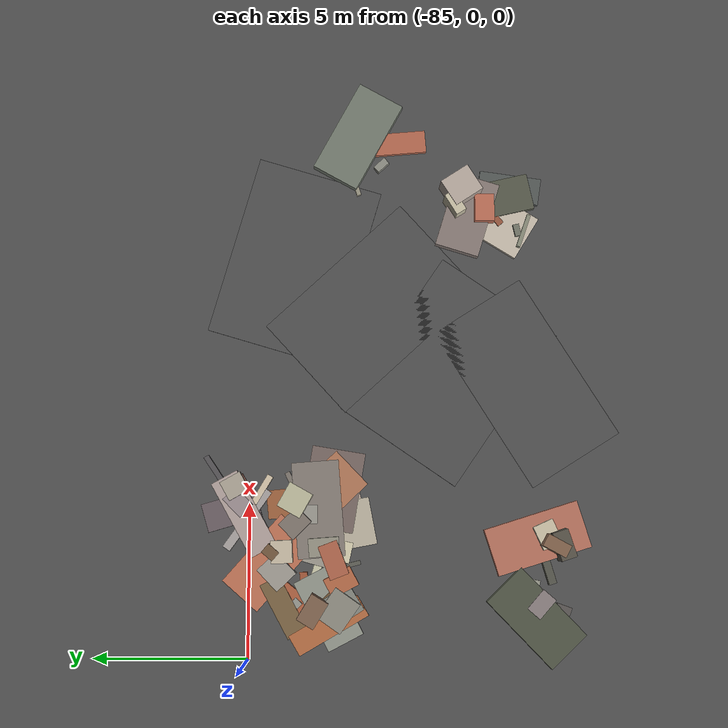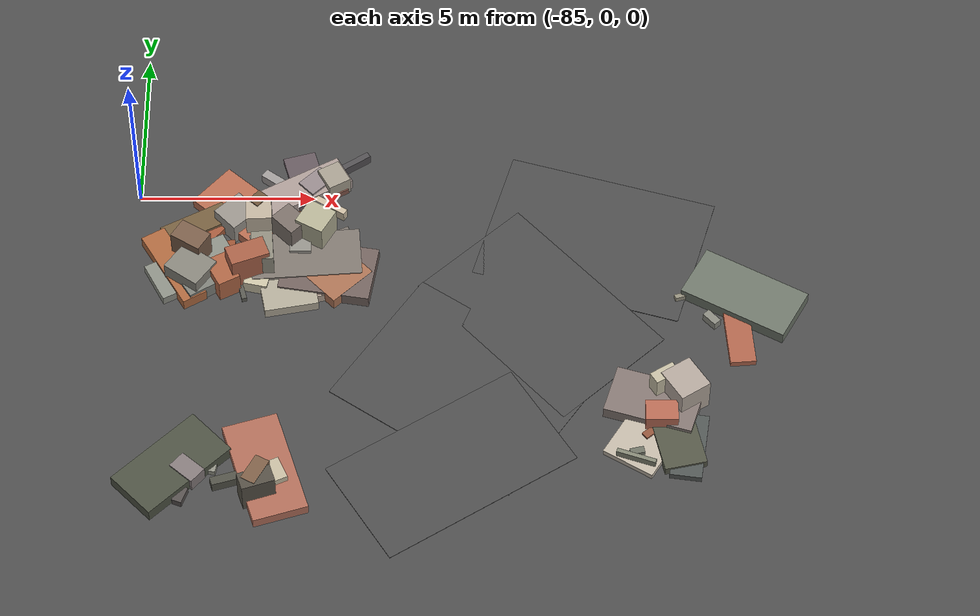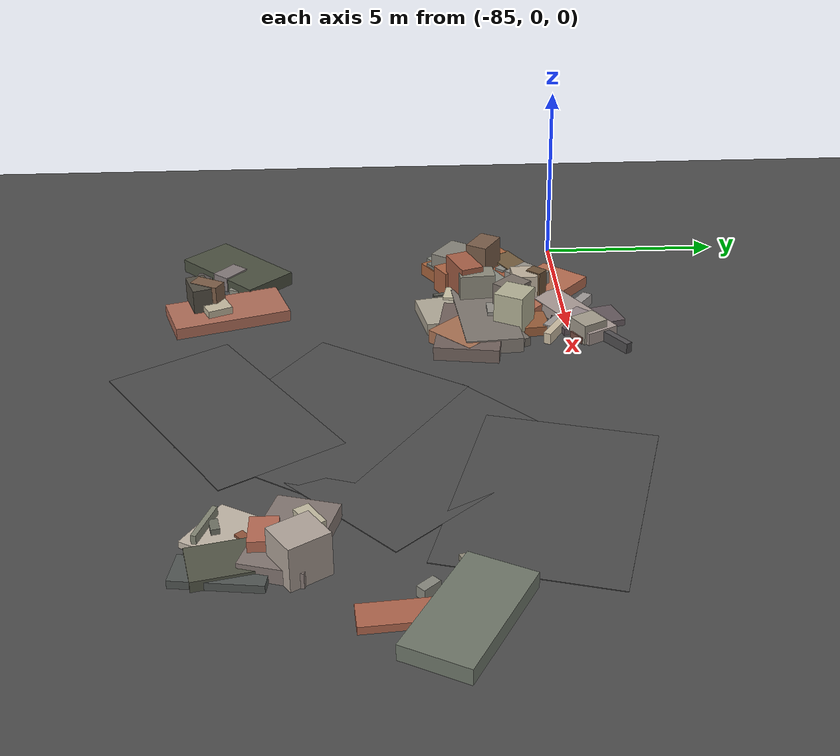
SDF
<sdf version="1.6">
 <world name="navitas_arena">
  <model name="ground_plane">
   <static>true</static>
   <link name="link">
    <collision name="collision">
     <geometry><plane><normal>0 0 1</normal><size>400 400</size></plane></geometry>
     <surface><friction><ode><mu>0.800</mu><mu2>0.800</mu2></ode></friction></surface>
    </collision>
    <visual name="visual">
     <cast_shadows>false</cast_shadows>
     <geometry><plane><normal>0 0 1</normal><size>400 400</size></plane></geometry>
     <material>
      <specular>0.04 0.04 0.04 1</specular>
      <script>
       <uri>file://media/materials/scripts/navitas_asphalt.material</uri>
       <name>Navitas/RealArenaAsphalt</name>
      </script>
     </material>
    </visual>
   </link>
  </model>
  <model name="road_kolay_3_9">
   <static>true</static>
   <pose>-76.035 -9.036 0.040 0 0 2.138</pose>
   <link name="link">
    <collision name="col"><geometry><box><size>3.358 6.000 0.020</size></box></geometry></collision>
    <visual name="vis">
     <geometry><box><size>3.358 6.000 0.020</size></box></geometry>
     <material>
      <specular>0.04 0.04 0.04 1</specular>
      <script>
       <uri>file://media/materials/scripts/navitas_asphalt.material</uri>
       <name>Navitas/RealArenaAsphalt</name>
      </script>
     </material>
    </visual>
   </link>
  </model>
  <model name="road_kolay_3_10">
   <static>true</static>
   <pose>-75.678 -6.500 0.040 0 0 0.974</pose>
   <link name="link">
    <collision name="col"><geometry><box><size>4.526 6.000 0.020</size></box></geometry></collision>
    <visual name="vis">
     <geometry><box><size>4.526 6.000 0.020</size></box></geometry>
     <material>
      <specular>0.04 0.04 0.04 1</specular>
      <script>
       <uri>file://media/materials/scripts/navitas_asphalt.material</uri>
       <name>Navitas/RealArenaAsphalt</name>
      </script>
     </material>
    </visual>
   </link>
  </model>
  <model name="road_kolay_3_11">
   <static>true</static>
   <pose>-73.572 -4.000 0.040 0 0 0.744</pose>
   <link name="link">
    <collision name="col"><geometry><box><size>3.855 6.000 0.020</size></box></geometry></collision>
    <visual name="vis">
     <geometry><box><size>3.855 6.000 0.020</size></box></geometry>
     <material>
      <specular>0.04 0.04 0.04 1</specular>
      <script>
       <uri>file://media/materials/scripts/navitas_asphalt.material</uri>
       <name>Navitas/RealArenaAsphalt</name>
      </script>
     </material>
    </visual>
   </link>
  </model>
  <model name="road_kolay_3_12">
   <static>true</static>
   <pose>-72.023 -1.417 0.040 0 0 1.287</pose>
   <link name="link">
    <collision name="col"><geometry><box><size>4.199 6.000 0.020</size></box></geometry></collision>
    <visual name="vis">
     <geometry><box><size>4.199 6.000 0.020</size></box></geometry>
     <material>
      <specular>0.04 0.04 0.04 1</specular>
      <script>
       <uri>file://media/materials/scripts/navitas_asphalt.material</uri>
       <name>Navitas/RealArenaAsphalt</name>
      </script>
     </material>
    </visual>
   </link>
  </model>
  <model name="deb_kolay_2">
   <static>true</static>
   <pose>-80.554 -2.264 0.000 0 0 0</pose>
   <link name="link">
    <collision name="col_0">
     <pose>0.651 0.755 0.613 0.000 0.000 -0.508</pose>
     <geometry><box><size>0.859 0.829 1.226</size></box></geometry>
    </collision>
    <visual name="vis_0">
     <pose>0.651 0.755 0.613 0.000 0.000 -0.508</pose>
     <geometry><box><size>0.859 0.829 1.226</size></box></geometry>
     <material>
      <ambient>0.66 0.64 0.54 1</ambient>
      <diffuse>0.71 0.70 0.59 1</diffuse>
      <specular>0.05 0.05 0.045 1</specular>
     </material>
    </visual>
    <collision name="col_1">
     <pose>1.012 -0.440 0.184 0.000 0.000 -0.160</pose>
     <geometry><box><size>2.603 1.739 0.369</size></box></geometry>
    </collision>
    <visual name="vis_1">
     <pose>1.012 -0.440 0.184 0.000 0.000 -0.160</pose>
     <geometry><box><size>2.603 1.739 0.369</size></box></geometry>
     <material>
      <ambient>0.41 0.36 0.34 1</ambient>
      <diffuse>0.45 0.39 0.37 1</diffuse>
      <specular>0.05 0.05 0.045 1</specular>
     </material>
    </visual>
    <collision name="col_2">
     <pose>-0.212 -0.435 0.062 0.000 0.000 0.553</pose>
     <geometry><box><size>1.497 0.305 0.124</size></box></geometry>
    </collision>
    <visual name="vis_2">
     <pose>-0.212 -0.435 0.062 0.000 0.000 0.553</pose>
     <geometry><box><size>1.497 0.305 0.124</size></box></geometry>
     <material>
      <ambient>0.40 0.37 0.33 1</ambient>
      <diffuse>0.43 0.40 0.35 1</diffuse>
      <specular>0.05 0.05 0.045 1</specular>
     </material>
    </visual>
    <collision name="col_3">
     <pose>0.547 -1.020 0.134 0.000 0.000 0.248</pose>
     <geometry><box><size>1.493 0.755 0.269</size></box></geometry>
    </collision>
    <visual name="vis_3">
     <pose>0.547 -1.020 0.134 0.000 0.000 0.248</pose>
     <geometry><box><size>1.493 0.755 0.269</size></box></geometry>
     <material>
      <ambient>0.65 0.59 0.53 1</ambient>
      <diffuse>0.70 0.63 0.57 1</diffuse>
      <specular>0.05 0.05 0.045 1</specular>
     </material>
    </visual>
    <collision name="col_4">
     <pose>-0.839 -0.039 0.086 0.000 0.000 -0.954</pose>
     <geometry><box><size>1.431 0.207 0.172</size></box></geometry>
    </collision>
    <visual name="vis_4">
     <pose>-0.839 -0.039 0.086 0.000 0.000 -0.954</pose>
     <geometry><box><size>1.431 0.207 0.172</size></box></geometry>
     <material>
      <ambient>0.42 0.31 0.21 1</ambient>
      <diffuse>0.46 0.33 0.22 1</diffuse>
      <specular>0.05 0.05 0.045 1</specular>
     </material>
    </visual>
    <collision name="col_5">
     <pose>-0.965 -0.698 0.192 0.000 0.000 -0.212</pose>
     <geometry><box><size>0.676 0.712 0.384</size></box></geometry>
    </collision>
    <visual name="vis_5">
     <pose>-0.965 -0.698 0.192 0.000 0.000 -0.212</pose>
     <geometry><box><size>0.676 0.712 0.384</size></box></geometry>
     <material>
      <ambient>0.74 0.71 0.61 1</ambient>
      <diffuse>0.80 0.77 0.66 1</diffuse>
      <specular>0.05 0.05 0.045 1</specular>
     </material>
    </visual>
    <collision name="col_6">
     <pose>-0.835 -0.171 0.544 0.000 0.000 0.081</pose>
     <geometry><box><size>0.597 0.976 1.089</size></box></geometry>
    </collision>
    <visual name="vis_6">
     <pose>-0.835 -0.171 0.544 0.000 0.000 0.081</pose>
     <geometry><box><size>0.597 0.976 1.089</size></box></geometry>
     <material>
      <ambient>0.52 0.51 0.46 1</ambient>
      <diffuse>0.56 0.55 0.49 1</diffuse>
      <specular>0.05 0.05 0.045 1</specular>
     </material>
    </visual>
   </link>
  </model>
  <model name="deb_kolay_29">
   <static>true</static>
   <pose>-67.892 -3.838 0.000 0 0 0</pose>
   <link name="link">
    <collision name="col_0">
     <pose>-0.892 -0.433 0.130 0.000 0.000 0.741</pose>
     <geometry><box><size>0.238 0.470 0.260</size></box></geometry>
    </collision>
    <visual name="vis_0">
     <pose>-0.892 -0.433 0.130 0.000 0.000 0.741</pose>
     <geometry><box><size>0.238 0.470 0.260</size></box></geometry>
     <material>
      <ambient>0.50 0.50 0.46 1</ambient>
      <diffuse>0.54 0.54 0.50 1</diffuse>
      <specular>0.05 0.05 0.045 1</specular>
     </material>
    </visual>
    <collision name="col_1">
     <pose>-1.013 0.576 0.102 0.000 0.000 0.300</pose>
     <geometry><box><size>1.855 0.139 0.204</size></box></geometry>
    </collision>
    <visual name="vis_1">
     <pose>-1.013 0.576 0.102 0.000 0.000 0.300</pose>
     <geometry><box><size>1.855 0.139 0.204</size></box></geometry>
     <material>
      <ambient>0.54 0.52 0.45 1</ambient>
      <diffuse>0.58 0.56 0.49 1</diffuse>
      <specular>0.05 0.05 0.045 1</specular>
     </material>
    </visual>
    <collision name="col_2">
     <pose>-0.605 1.030 0.143 0.000 0.000 1.935</pose>
     <geometry><box><size>1.179 0.144 0.286</size></box></geometry>
    </collision>
    <visual name="vis_2">
     <pose>-0.605 1.030 0.143 0.000 0.000 1.935</pose>
     <geometry><box><size>1.179 0.144 0.286</size></box></geometry>
     <material>
      <ambient>0.34 0.33 0.30 1</ambient>
      <diffuse>0.37 0.35 0.32 1</diffuse>
      <specular>0.05 0.05 0.045 1</specular>
     </material>
    </visual>
    <collision name="col_3">
     <pose>-0.638 0.671 0.174 0.000 0.000 1.860</pose>
     <geometry><box><size>0.388 0.447 0.348</size></box></geometry>
    </collision>
    <visual name="vis_3">
     <pose>-0.638 0.671 0.174 0.000 0.000 1.860</pose>
     <geometry><box><size>0.388 0.447 0.348</size></box></geometry>
     <material>
      <ambient>0.58 0.59 0.52 1</ambient>
      <diffuse>0.63 0.64 0.56 1</diffuse>
      <specular>0.05 0.05 0.045 1</specular>
     </material>
    </visual>
    <collision name="col_4">
     <pose>-0.734 0.701 0.133 0.000 0.000 2.496</pose>
     <geometry><box><size>0.183 0.207 0.266</size></box></geometry>
    </collision>
    <visual name="vis_4">
     <pose>-0.734 0.701 0.133 0.000 0.000 2.496</pose>
     <geometry><box><size>0.183 0.207 0.266</size></box></geometry>
     <material>
      <ambient>0.49 0.49 0.45 1</ambient>
      <diffuse>0.53 0.53 0.49 1</diffuse>
      <specular>0.05 0.05 0.045 1</specular>
     </material>
    </visual>
    <collision name="col_5">
     <pose>-0.169 -0.607 0.093 0.000 0.000 1.655</pose>
     <geometry><box><size>2.595 0.722 0.186</size></box></geometry>
    </collision>
    <visual name="vis_5">
     <pose>-0.169 -0.607 0.093 0.000 0.000 1.655</pose>
     <geometry><box><size>2.595 0.722 0.186</size></box></geometry>
     <material>
      <ambient>0.64 0.37 0.27 1</ambient>
      <diffuse>0.69 0.40 0.30 1</diffuse>
      <specular>0.05 0.05 0.045 1</specular>
     </material>
    </visual>
    <collision name="col_6">
     <pose>0.046 0.342 0.191 0.000 0.000 2.640</pose>
     <geometry><box><size>3.188 1.610 0.382</size></box></geometry>
    </collision>
    <visual name="vis_6">
     <pose>0.046 0.342 0.191 0.000 0.000 2.640</pose>
     <geometry><box><size>3.188 1.610 0.382</size></box></geometry>
     <material>
      <ambient>0.41 0.43 0.38 1</ambient>
      <diffuse>0.44 0.47 0.42 1</diffuse>
      <specular>0.05 0.05 0.045 1</specular>
     </material>
    </visual>
   </link>
  </model>
  <model name="deb_kolay_38">
   <static>true</static>
   <pose>-80.205 -1.966 0.000 0 0 0</pose>
   <link name="link">
    <collision name="col_0">
     <pose>0.826 0.015 0.114 0.000 0.000 1.379</pose>
     <geometry><box><size>0.308 0.367 0.227</size></box></geometry>
    </collision>
    <visual name="vis_0">
     <pose>0.826 0.015 0.114 0.000 0.000 1.379</pose>
     <geometry><box><size>0.308 0.367 0.227</size></box></geometry>
     <material>
      <ambient>0.40 0.35 0.34 1</ambient>
      <diffuse>0.43 0.38 0.36 1</diffuse>
      <specular>0.05 0.05 0.045 1</specular>
     </material>
    </visual>
    <collision name="col_1">
     <pose>-0.144 0.079 0.251 0.000 0.000 1.573</pose>
     <geometry><box><size>0.656 0.609 0.502</size></box></geometry>
    </collision>
    <visual name="vis_1">
     <pose>-0.144 0.079 0.251 0.000 0.000 1.573</pose>
     <geometry><box><size>0.656 0.609 0.502</size></box></geometry>
     <material>
      <ambient>0.54 0.52 0.50 1</ambient>
      <diffuse>0.58 0.57 0.54 1</diffuse>
      <specular>0.05 0.05 0.045 1</specular>
     </material>
    </visual>
    <collision name="col_2">
     <pose>-0.429 0.456 0.557 0.000 0.000 2.352</pose>
     <geometry><box><size>0.819 0.673 1.114</size></box></geometry>
    </collision>
    <visual name="vis_2">
     <pose>-0.429 0.456 0.557 0.000 0.000 2.352</pose>
     <geometry><box><size>0.819 0.673 1.114</size></box></geometry>
     <material>
      <ambient>0.44 0.41 0.38 1</ambient>
      <diffuse>0.48 0.44 0.41 1</diffuse>
      <specular>0.05 0.05 0.045 1</specular>
     </material>
    </visual>
    <collision name="col_3">
     <pose>0.225 0.124 0.079 0.000 0.000 3.412</pose>
     <geometry><box><size>0.389 0.396 0.159</size></box></geometry>
    </collision>
    <visual name="vis_3">
     <pose>0.225 0.124 0.079 0.000 0.000 3.412</pose>
     <geometry><box><size>0.389 0.396 0.159</size></box></geometry>
     <material>
      <ambient>0.37 0.32 0.31 1</ambient>
      <diffuse>0.40 0.34 0.34 1</diffuse>
      <specular>0.05 0.05 0.045 1</specular>
     </material>
    </visual>
    <collision name="col_4">
     <pose>0.017 -0.054 0.113 0.000 0.000 1.210</pose>
     <geometry><box><size>2.265 0.147 0.227</size></box></geometry>
    </collision>
    <visual name="vis_4">
     <pose>0.017 -0.054 0.113 0.000 0.000 1.210</pose>
     <geometry><box><size>2.265 0.147 0.227</size></box></geometry>
     <material>
      <ambient>0.69 0.66 0.55 1</ambient>
      <diffuse>0.75 0.72 0.59 1</diffuse>
      <specular>0.05 0.05 0.045 1</specular>
     </material>
    </visual>
    <collision name="col_5">
     <pose>-0.809 0.172 0.099 0.000 0.000 3.140</pose>
     <geometry><box><size>0.459 0.172 0.198</size></box></geometry>
    </collision>
    <visual name="vis_5">
     <pose>-0.809 0.172 0.099 0.000 0.000 3.140</pose>
     <geometry><box><size>0.459 0.172 0.198</size></box></geometry>
     <material>
      <ambient>0.65 0.62 0.55 1</ambient>
      <diffuse>0.70 0.67 0.60 1</diffuse>
      <specular>0.05 0.05 0.045 1</specular>
     </material>
    </visual>
    <collision name="col_6">
     <pose>-0.823 -0.000 0.113 0.000 0.000 1.046</pose>
     <geometry><box><size>1.074 0.150 0.225</size></box></geometry>
    </collision>
    <visual name="vis_6">
     <pose>-0.823 -0.000 0.113 0.000 0.000 1.046</pose>
     <geometry><box><size>1.074 0.150 0.225</size></box></geometry>
     <material>
      <ambient>0.65 0.41 0.28 1</ambient>
      <diffuse>0.71 0.44 0.30 1</diffuse>
      <specular>0.05 0.05 0.045 1</specular>
     </material>
    </visual>
   </link>
  </model>
  <model name="deb_kolay_51">
   <static>true</static>
   <pose>-81.294 -9.757 0.000 0 0 0</pose>
   <link name="link">
    <collision name="col_0">
     <pose>-0.360 0.208 0.156 0.000 0.000 3.434</pose>
     <geometry><box><size>1.873 0.255 0.312</size></box></geometry>
    </collision>
    <visual name="vis_0">
     <pose>-0.360 0.208 0.156 0.000 0.000 3.434</pose>
     <geometry><box><size>1.873 0.255 0.312</size></box></geometry>
     <material>
      <ambient>0.30 0.29 0.26 1</ambient>
      <diffuse>0.32 0.32 0.28 1</diffuse>
      <specular>0.05 0.05 0.045 1</specular>
     </material>
    </visual>
    <collision name="col_1">
     <pose>-0.133 0.110 0.080 0.000 0.000 4.442</pose>
     <geometry><box><size>0.409 0.341 0.161</size></box></geometry>
    </collision>
    <visual name="vis_1">
     <pose>-0.133 0.110 0.080 0.000 0.000 4.442</pose>
     <geometry><box><size>0.409 0.341 0.161</size></box></geometry>
     <material>
      <ambient>0.67 0.62 0.54 1</ambient>
      <diffuse>0.72 0.67 0.58 1</diffuse>
      <specular>0.05 0.05 0.045 1</specular>
     </material>
    </visual>
    <collision name="col_2">
     <pose>0.200 0.413 0.159 0.000 0.000 1.880</pose>
     <geometry><box><size>3.154 1.557 0.318</size></box></geometry>
    </collision>
    <visual name="vis_2">
     <pose>0.200 0.413 0.159 0.000 0.000 1.880</pose>
     <geometry><box><size>3.154 1.557 0.318</size></box></geometry>
     <material>
      <ambient>0.64 0.40 0.32 1</ambient>
      <diffuse>0.69 0.43 0.35 1</diffuse>
      <specular>0.05 0.05 0.045 1</specular>
     </material>
    </visual>
    <collision name="col_3">
     <pose>-0.018 -0.114 0.502 0.000 0.000 4.220</pose>
     <geometry><box><size>0.826 0.427 1.004</size></box></geometry>
    </collision>
    <visual name="vis_3">
     <pose>-0.018 -0.114 0.502 0.000 0.000 4.220</pose>
     <geometry><box><size>0.826 0.427 1.004</size></box></geometry>
     <material>
      <ambient>0.45 0.34 0.26 1</ambient>
      <diffuse>0.49 0.37 0.28 1</diffuse>
      <specular>0.05 0.05 0.045 1</specular>
     </material>
    </visual>
    <collision name="col_4">
     <pose>0.006 -0.354 0.495 0.000 0.000 3.466</pose>
     <geometry><box><size>0.939 0.521 0.990</size></box></geometry>
    </collision>
    <visual name="vis_4">
     <pose>0.006 -0.354 0.495 0.000 0.000 3.466</pose>
     <geometry><box><size>0.939 0.521 0.990</size></box></geometry>
     <material>
      <ambient>0.30 0.29 0.25 1</ambient>
      <diffuse>0.33 0.31 0.27 1</diffuse>
      <specular>0.05 0.05 0.045 1</specular>
     </material>
    </visual>
    <collision name="col_5">
     <pose>0.328 0.112 0.259 0.000 0.000 3.572</pose>
     <geometry><box><size>0.812 0.684 0.518</size></box></geometry>
    </collision>
    <visual name="vis_5">
     <pose>0.328 0.112 0.259 0.000 0.000 3.572</pose>
     <geometry><box><size>0.812 0.684 0.518</size></box></geometry>
     <material>
      <ambient>0.71 0.68 0.58 1</ambient>
      <diffuse>0.77 0.73 0.63 1</diffuse>
      <specular>0.05 0.05 0.045 1</specular>
     </material>
    </visual>
    <collision name="col_6">
     <pose>0.303 0.280 0.132 0.000 0.000 4.116</pose>
     <geometry><box><size>0.189 0.349 0.263</size></box></geometry>
    </collision>
    <visual name="vis_6">
     <pose>0.303 0.280 0.132 0.000 0.000 4.116</pose>
     <geometry><box><size>0.189 0.349 0.263</size></box></geometry>
     <material>
      <ambient>0.51 0.48 0.48 1</ambient>
      <diffuse>0.56 0.52 0.52 1</diffuse>
      <specular>0.05 0.05 0.045 1</specular>
     </material>
    </visual>
   </link>
  </model>
  <model name="deb_kolay_62">
   <static>true</static>
   <pose>-80.156 -0.128 0.000 0 0 0</pose>
   <link name="link">
    <collision name="col_0">
     <pose>-0.369 0.181 0.151 0.000 0.000 -0.623</pose>
     <geometry><box><size>2.317 0.274 0.302</size></box></geometry>
    </collision>
    <visual name="vis_0">
     <pose>-0.369 0.181 0.151 0.000 0.000 -0.623</pose>
     <geometry><box><size>2.317 0.274 0.302</size></box></geometry>
     <material>
      <ambient>0.58 0.56 0.55 1</ambient>
      <diffuse>0.63 0.61 0.60 1</diffuse>
      <specular>0.05 0.05 0.045 1</specular>
     </material>
    </visual>
    <collision name="col_1">
     <pose>-0.093 0.699 0.091 0.000 0.000 1.854</pose>
     <geometry><box><size>1.813 0.937 0.182</size></box></geometry>
    </collision>
    <visual name="vis_1">
     <pose>-0.093 0.699 0.091 0.000 0.000 1.854</pose>
     <geometry><box><size>1.813 0.937 0.182</size></box></geometry>
     <material>
      <ambient>0.37 0.33 0.34 1</ambient>
      <diffuse>0.40 0.35 0.37 1</diffuse>
      <specular>0.05 0.05 0.045 1</specular>
     </material>
    </visual>
    <collision name="col_2">
     <pose>0.541 -0.254 0.156 0.000 0.000 -0.539</pose>
     <geometry><box><size>1.180 0.197 0.311</size></box></geometry>
    </collision>
    <visual name="vis_2">
     <pose>0.541 -0.254 0.156 0.000 0.000 -0.539</pose>
     <geometry><box><size>1.180 0.197 0.311</size></box></geometry>
     <material>
      <ambient>0.74 0.68 0.59 1</ambient>
      <diffuse>0.80 0.74 0.64 1</diffuse>
      <specular>0.05 0.05 0.045 1</specular>
     </material>
    </visual>
    <collision name="col_3">
     <pose>-0.197 0.293 0.172 0.000 0.000 0.509</pose>
     <geometry><box><size>2.714 0.942 0.345</size></box></geometry>
    </collision>
    <visual name="vis_3">
     <pose>-0.197 0.293 0.172 0.000 0.000 0.509</pose>
     <geometry><box><size>2.714 0.942 0.345</size></box></geometry>
     <material>
      <ambient>0.62 0.57 0.55 1</ambient>
      <diffuse>0.67 0.61 0.59 1</diffuse>
      <specular>0.05 0.05 0.045 1</specular>
     </material>
    </visual>
   </link>
  </model>
  <model name="deb_kolay_78">
   <static>true</static>
   <pose>-83.105 -2.044 0.000 0 0 0</pose>
   <link name="link">
    <collision name="col_0">
     <pose>-0.296 -0.847 0.411 0.000 0.000 2.531</pose>
     <geometry><box><size>1.125 0.962 0.823</size></box></geometry>
    </collision>
    <visual name="vis_0">
     <pose>-0.296 -0.847 0.411 0.000 0.000 2.531</pose>
     <geometry><box><size>1.125 0.962 0.823</size></box></geometry>
     <material>
      <ambient>0.49 0.48 0.45 1</ambient>
      <diffuse>0.53 0.52 0.48 1</diffuse>
      <specular>0.05 0.05 0.045 1</specular>
     </material>
    </visual>
    <collision name="col_1">
     <pose>0.596 -0.947 0.369 0.000 0.000 3.635</pose>
     <geometry><box><size>0.654 0.957 0.737</size></box></geometry>
    </collision>
    <visual name="vis_1">
     <pose>0.596 -0.947 0.369 0.000 0.000 3.635</pose>
     <geometry><box><size>0.654 0.957 0.737</size></box></geometry>
     <material>
      <ambient>0.63 0.37 0.25 1</ambient>
      <diffuse>0.68 0.40 0.27 1</diffuse>
      <specular>0.05 0.05 0.045 1</specular>
     </material>
    </visual>
    <collision name="col_2">
     <pose>-0.230 0.901 0.175 0.000 0.000 3.638</pose>
     <geometry><box><size>1.949 0.702 0.350</size></box></geometry>
    </collision>
    <visual name="vis_2">
     <pose>-0.230 0.901 0.175 0.000 0.000 3.638</pose>
     <geometry><box><size>1.949 0.702 0.350</size></box></geometry>
     <material>
      <ambient>0.43 0.34 0.23 1</ambient>
      <diffuse>0.46 0.37 0.25 1</diffuse>
      <specular>0.05 0.05 0.045 1</specular>
     </material>
    </visual>
    <collision name="col_3">
     <pose>-0.802 -0.554 0.179 0.000 0.000 2.103</pose>
     <geometry><box><size>2.566 0.728 0.358</size></box></geometry>
    </collision>
    <visual name="vis_3">
     <pose>-0.802 -0.554 0.179 0.000 0.000 2.103</pose>
     <geometry><box><size>2.566 0.728 0.358</size></box></geometry>
     <material>
      <ambient>0.63 0.38 0.23 1</ambient>
      <diffuse>0.68 0.41 0.25 1</diffuse>
      <specular>0.05 0.05 0.045 1</specular>
     </material>
    </visual>
    <collision name="col_4">
     <pose>0.217 0.237 0.126 0.000 0.000 3.191</pose>
     <geometry><box><size>1.364 0.253 0.252</size></box></geometry>
    </collision>
    <visual name="vis_4">
     <pose>0.217 0.237 0.126 0.000 0.000 3.191</pose>
     <geometry><box><size>1.364 0.253 0.252</size></box></geometry>
     <material>
      <ambient>0.57 0.31 0.20 1</ambient>
      <diffuse>0.61 0.33 0.21 1</diffuse>
      <specular>0.05 0.05 0.045 1</specular>
     </material>
    </visual>
    <collision name="col_5">
     <pose>-0.161 0.548 0.162 0.000 0.000 3.947</pose>
     <geometry><box><size>0.296 0.423 0.325</size></box></geometry>
    </collision>
    <visual name="vis_5">
     <pose>-0.161 0.548 0.162 0.000 0.000 3.947</pose>
     <geometry><box><size>0.296 0.423 0.325</size></box></geometry>
     <material>
      <ambient>0.51 0.52 0.49 1</ambient>
      <diffuse>0.56 0.56 0.53 1</diffuse>
      <specular>0.05 0.05 0.045 1</specular>
     </material>
    </visual>
   </link>
  </model>
  <model name="deb_kolay_99">
   <static>true</static>
   <pose>-79.825 -2.002 0.000 0 0 0</pose>
   <link name="link">
    <collision name="col_0">
     <pose>0.340 0.049 0.068 0.000 0.000 1.068</pose>
     <geometry><box><size>0.245 0.166 0.136</size></box></geometry>
    </collision>
    <visual name="vis_0">
     <pose>0.340 0.049 0.068 0.000 0.000 1.068</pose>
     <geometry><box><size>0.245 0.166 0.136</size></box></geometry>
     <material>
      <ambient>0.75 0.72 0.62 1</ambient>
      <diffuse>0.81 0.78 0.67 1</diffuse>
      <specular>0.05 0.05 0.045 1</specular>
     </material>
    </visual>
    <collision name="col_1">
     <pose>0.140 0.456 0.122 0.000 0.000 0.441</pose>
     <geometry><box><size>1.515 0.171 0.243</size></box></geometry>
    </collision>
    <visual name="vis_1">
     <pose>0.140 0.456 0.122 0.000 0.000 0.441</pose>
     <geometry><box><size>1.515 0.171 0.243</size></box></geometry>
     <material>
      <ambient>0.44 0.41 0.38 1</ambient>
      <diffuse>0.47 0.44 0.41 1</diffuse>
      <specular>0.05 0.05 0.045 1</specular>
     </material>
    </visual>
    <collision name="col_2">
     <pose>-0.501 0.066 0.127 0.000 0.000 0.576</pose>
     <geometry><box><size>0.388 0.281 0.253</size></box></geometry>
    </collision>
    <visual name="vis_2">
     <pose>-0.501 0.066 0.127 0.000 0.000 0.576</pose>
     <geometry><box><size>0.388 0.281 0.253</size></box></geometry>
     <material>
      <ambient>0.52 0.49 0.47 1</ambient>
      <diffuse>0.56 0.53 0.51 1</diffuse>
      <specular>0.05 0.05 0.045 1</specular>
     </material>
    </visual>
    <collision name="col_3">
     <pose>0.133 -0.438 0.187 0.000 0.000 -0.804</pose>
     <geometry><box><size>2.477 1.476 0.374</size></box></geometry>
    </collision>
    <visual name="vis_3">
     <pose>0.133 -0.438 0.187 0.000 0.000 -0.804</pose>
     <geometry><box><size>2.477 1.476 0.374</size></box></geometry>
     <material>
      <ambient>0.62 0.42 0.31 1</ambient>
      <diffuse>0.67 0.45 0.33 1</diffuse>
      <specular>0.05 0.05 0.045 1</specular>
     </material>
    </visual>
    <collision name="col_4">
     <pose>-0.114 0.210 0.134 0.000 0.000 1.517</pose>
     <geometry><box><size>1.393 0.135 0.268</size></box></geometry>
    </collision>
    <visual name="vis_4">
     <pose>-0.114 0.210 0.134 0.000 0.000 1.517</pose>
     <geometry><box><size>1.393 0.135 0.268</size></box></geometry>
     <material>
      <ambient>0.29 0.30 0.26 1</ambient>
      <diffuse>0.31 0.32 0.28 1</diffuse>
      <specular>0.05 0.05 0.045 1</specular>
     </material>
    </visual>
    <collision name="col_5">
     <pose>-0.366 -0.239 0.203 0.000 0.000 0.079</pose>
     <geometry><box><size>3.107 1.533 0.406</size></box></geometry>
    </collision>
    <visual name="vis_5">
     <pose>-0.366 -0.239 0.203 0.000 0.000 0.079</pose>
     <geometry><box><size>3.107 1.533 0.406</size></box></geometry>
     <material>
      <ambient>0.46 0.43 0.41 1</ambient>
      <diffuse>0.50 0.47 0.44 1</diffuse>
      <specular>0.05 0.05 0.045 1</specular>
     </material>
    </visual>
    <collision name="col_6">
     <pose>-0.118 0.280 0.133 0.000 0.000 1.672</pose>
     <geometry><box><size>2.271 0.925 0.265</size></box></geometry>
    </collision>
    <visual name="vis_6">
     <pose>-0.118 0.280 0.133 0.000 0.000 1.672</pose>
     <geometry><box><size>2.271 0.925 0.265</size></box></geometry>
     <material>
      <ambient>0.55 0.34 0.21 1</ambient>
      <diffuse>0.60 0.37 0.23 1</diffuse>
      <specular>0.05 0.05 0.045 1</specular>
     </material>
    </visual>
   </link>
  </model>
  <model name="deb_kolay_101">
   <static>true</static>
   <pose>-82.413 -2.595 0.000 0 0 0</pose>
   <link name="link">
    <collision name="col_0">
     <pose>-0.180 0.528 0.083 0.000 0.000 2.847</pose>
     <geometry><box><size>1.720 0.264 0.166</size></box></geometry>
    </collision>
    <visual name="vis_0">
     <pose>-0.180 0.528 0.083 0.000 0.000 2.847</pose>
     <geometry><box><size>1.720 0.264 0.166</size></box></geometry>
     <material>
      <ambient>0.70 0.69 0.58 1</ambient>
      <diffuse>0.75 0.74 0.63 1</diffuse>
      <specular>0.05 0.05 0.045 1</specular>
     </material>
    </visual>
    <collision name="col_1">
     <pose>-0.629 -0.299 0.169 0.000 0.000 1.758</pose>
     <geometry><box><size>0.488 0.350 0.337</size></box></geometry>
    </collision>
    <visual name="vis_1">
     <pose>-0.629 -0.299 0.169 0.000 0.000 1.758</pose>
     <geometry><box><size>0.488 0.350 0.337</size></box></geometry>
     <material>
      <ambient>0.67 0.64 0.56 1</ambient>
      <diffuse>0.72 0.69 0.60 1</diffuse>
      <specular>0.05 0.05 0.045 1</specular>
     </material>
    </visual>
    <collision name="col_2">
     <pose>0.620 -0.148 0.624 0.000 0.000 3.508</pose>
     <geometry><box><size>1.118 0.636 1.248</size></box></geometry>
    </collision>
    <visual name="vis_2">
     <pose>0.620 -0.148 0.624 0.000 0.000 3.508</pose>
     <geometry><box><size>1.118 0.636 1.248</size></box></geometry>
     <material>
      <ambient>0.61 0.35 0.26 1</ambient>
      <diffuse>0.66 0.38 0.28 1</diffuse>
      <specular>0.05 0.05 0.045 1</specular>
     </material>
    </visual>
    <collision name="col_3">
     <pose>0.354 -0.342 0.077 0.000 0.000 1.821</pose>
     <geometry><box><size>1.397 0.140 0.154</size></box></geometry>
    </collision>
    <visual name="vis_3">
     <pose>0.354 -0.342 0.077 0.000 0.000 1.821</pose>
     <geometry><box><size>1.397 0.140 0.154</size></box></geometry>
     <material>
      <ambient>0.32 0.32 0.30 1</ambient>
      <diffuse>0.35 0.35 0.32 1</diffuse>
      <specular>0.05 0.05 0.045 1</specular>
     </material>
    </visual>
   </link>
  </model>
  <model name="deb_kolay_103">
   <static>true</static>
   <pose>-80.785 -2.397 0.000 0 0 0</pose>
   <link name="link">
    <collision name="col_0">
     <pose>0.242 0.186 0.092 0.000 0.000 2.879</pose>
     <geometry><box><size>2.797 1.578 0.184</size></box></geometry>
    </collision>
    <visual name="vis_0">
     <pose>0.242 0.186 0.092 0.000 0.000 2.879</pose>
     <geometry><box><size>2.797 1.578 0.184</size></box></geometry>
     <material>
      <ambient>0.55 0.53 0.49 1</ambient>
      <diffuse>0.59 0.57 0.53 1</diffuse>
      <specular>0.05 0.05 0.045 1</specular>
     </material>
    </visual>
    <collision name="col_1">
     <pose>0.382 -0.107 0.121 0.000 0.000 1.247</pose>
     <geometry><box><size>2.234 1.530 0.242</size></box></geometry>
    </collision>
    <visual name="vis_1">
     <pose>0.382 -0.107 0.121 0.000 0.000 1.247</pose>
     <geometry><box><size>2.234 1.530 0.242</size></box></geometry>
     <material>
      <ambient>0.60 0.36 0.27 1</ambient>
      <diffuse>0.64 0.39 0.29 1</diffuse>
      <specular>0.05 0.05 0.045 1</specular>
     </material>
    </visual>
    <collision name="col_2">
     <pose>0.023 -0.429 0.156 0.000 0.000 1.762</pose>
     <geometry><box><size>2.412 1.525 0.312</size></box></geometry>
    </collision>
    <visual name="vis_2">
     <pose>0.023 -0.429 0.156 0.000 0.000 1.762</pose>
     <geometry><box><size>2.412 1.525 0.312</size></box></geometry>
     <material>
      <ambient>0.64 0.62 0.56 1</ambient>
      <diffuse>0.70 0.67 0.60 1</diffuse>
      <specular>0.05 0.05 0.045 1</specular>
     </material>
    </visual>
    <collision name="col_3">
     <pose>0.366 0.236 0.127 0.000 0.000 1.157</pose>
     <geometry><box><size>2.081 0.310 0.255</size></box></geometry>
    </collision>
    <visual name="vis_3">
     <pose>0.366 0.236 0.127 0.000 0.000 1.157</pose>
     <geometry><box><size>2.081 0.310 0.255</size></box></geometry>
     <material>
      <ambient>0.47 0.30 0.26 1</ambient>
      <diffuse>0.50 0.32 0.28 1</diffuse>
      <specular>0.05 0.05 0.045 1</specular>
     </material>
    </visual>
    <collision name="col_4">
     <pose>-0.455 -0.177 0.081 0.000 0.000 1.575</pose>
     <geometry><box><size>0.451 0.321 0.162</size></box></geometry>
    </collision>
    <visual name="vis_4">
     <pose>-0.455 -0.177 0.081 0.000 0.000 1.575</pose>
     <geometry><box><size>0.451 0.321 0.162</size></box></geometry>
     <material>
      <ambient>0.40 0.24 0.18 1</ambient>
      <diffuse>0.43 0.26 0.20 1</diffuse>
      <specular>0.05 0.05 0.045 1</specular>
     </material>
    </visual>
   </link>
  </model>
  <model name="deb_kolay_114">
   <static>true</static>
   <pose>-83.208 -2.369 0.000 0 0 0</pose>
   <link name="link">
    <collision name="col_0">
     <pose>-0.158 -0.216 0.134 0.000 0.000 3.629</pose>
     <geometry><box><size>2.455 1.260 0.267</size></box></geometry>
    </collision>
    <visual name="vis_0">
     <pose>-0.158 -0.216 0.134 0.000 0.000 3.629</pose>
     <geometry><box><size>2.455 1.260 0.267</size></box></geometry>
     <material>
      <ambient>0.51 0.52 0.48 1</ambient>
      <diffuse>0.55 0.56 0.52 1</diffuse>
      <specular>0.05 0.05 0.045 1</specular>
     </material>
    </visual>
    <collision name="col_1">
     <pose>-0.533 -0.353 0.084 0.000 0.000 4.197</pose>
     <geometry><box><size>0.323 0.161 0.168</size></box></geometry>
    </collision>
    <visual name="vis_1">
     <pose>-0.533 -0.353 0.084 0.000 0.000 4.197</pose>
     <geometry><box><size>0.323 0.161 0.168</size></box></geometry>
     <material>
      <ambient>0.48 0.45 0.44 1</ambient>
      <diffuse>0.52 0.48 0.47 1</diffuse>
      <specular>0.05 0.05 0.045 1</specular>
     </material>
    </visual>
    <collision name="col_2">
     <pose>-0.208 0.283 0.552 0.000 0.000 2.597</pose>
     <geometry><box><size>0.943 0.627 1.103</size></box></geometry>
    </collision>
    <visual name="vis_2">
     <pose>-0.208 0.283 0.552 0.000 0.000 2.597</pose>
     <geometry><box><size>0.943 0.627 1.103</size></box></geometry>
     <material>
      <ambient>0.44 0.34 0.27 1</ambient>
      <diffuse>0.48 0.37 0.29 1</diffuse>
      <specular>0.05 0.05 0.045 1</specular>
     </material>
    </visual>
    <collision name="col_3">
     <pose>-0.502 0.007 0.140 0.000 0.000 2.366</pose>
     <geometry><box><size>1.700 0.852 0.280</size></box></geometry>
    </collision>
    <visual name="vis_3">
     <pose>-0.502 0.007 0.140 0.000 0.000 2.366</pose>
     <geometry><box><size>1.700 0.852 0.280</size></box></geometry>
     <material>
      <ambient>0.37 0.28 0.18 1</ambient>
      <diffuse>0.40 0.30 0.19 1</diffuse>
      <specular>0.05 0.05 0.045 1</specular>
     </material>
    </visual>
    <collision name="col_4">
     <pose>-0.067 -0.634 0.224 0.000 0.000 2.131</pose>
     <geometry><box><size>1.138 0.960 0.448</size></box></geometry>
    </collision>
    <visual name="vis_4">
     <pose>-0.067 -0.634 0.224 0.000 0.000 2.131</pose>
     <geometry><box><size>1.138 0.960 0.448</size></box></geometry>
     <material>
      <ambient>0.45 0.46 0.43 1</ambient>
      <diffuse>0.49 0.50 0.47 1</diffuse>
      <specular>0.05 0.05 0.045 1</specular>
     </material>
    </visual>
    <collision name="col_5">
     <pose>-0.148 -0.620 0.136 0.000 0.000 2.234</pose>
     <geometry><box><size>0.277 0.247 0.273</size></box></geometry>
    </collision>
    <visual name="vis_5">
     <pose>-0.148 -0.620 0.136 0.000 0.000 2.234</pose>
     <geometry><box><size>0.277 0.247 0.273</size></box></geometry>
     <material>
      <ambient>0.48 0.46 0.45 1</ambient>
      <diffuse>0.52 0.50 0.49 1</diffuse>
      <specular>0.05 0.05 0.045 1</specular>
     </material>
    </visual>
    <collision name="col_6">
     <pose>0.319 0.481 0.090 0.000 0.000 2.596</pose>
     <geometry><box><size>0.518 0.230 0.180</size></box></geometry>
    </collision>
    <visual name="vis_6">
     <pose>0.319 0.481 0.090 0.000 0.000 2.596</pose>
     <geometry><box><size>0.518 0.230 0.180</size></box></geometry>
     <material>
      <ambient>0.38 0.35 0.36 1</ambient>
      <diffuse>0.41 0.38 0.39 1</diffuse>
      <specular>0.05 0.05 0.045 1</specular>
     </material>
    </visual>
   </link>
  </model>
  <model name="deb_kolay_126">
   <static>true</static>
   <pose>-83.179 -9.564 0.000 0 0 0</pose>
   <link name="link">
    <collision name="col_0">
     <pose>-0.463 0.292 0.190 0.000 0.000 0.772</pose>
     <geometry><box><size>2.977 1.568 0.380</size></box></geometry>
    </collision>
    <visual name="vis_0">
     <pose>-0.463 0.292 0.190 0.000 0.000 0.772</pose>
     <geometry><box><size>2.977 1.568 0.380</size></box></geometry>
     <material>
      <ambient>0.27 0.30 0.24 1</ambient>
      <diffuse>0.30 0.32 0.26 1</diffuse>
      <specular>0.05 0.05 0.045 1</specular>
     </material>
    </visual>
    <collision name="col_1">
     <pose>-0.019 0.127 0.212 0.000 0.000 2.434</pose>
     <geometry><box><size>0.809 0.532 0.424</size></box></geometry>
    </collision>
    <visual name="vis_1">
     <pose>-0.019 0.127 0.212 0.000 0.000 2.434</pose>
     <geometry><box><size>0.809 0.532 0.424</size></box></geometry>
     <material>
      <ambient>0.48 0.45 0.44 1</ambient>
      <diffuse>0.52 0.48 0.48 1</diffuse>
      <specular>0.05 0.05 0.045 1</specular>
     </material>
    </visual>
    <collision name="col_2">
     <pose>-0.001 0.409 0.086 0.000 0.000 2.947</pose>
     <geometry><box><size>1.527 0.259 0.172</size></box></geometry>
    </collision>
    <visual name="vis_2">
     <pose>-0.001 0.409 0.086 0.000 0.000 2.947</pose>
     <geometry><box><size>1.527 0.259 0.172</size></box></geometry>
     <material>
      <ambient>0.53 0.53 0.48 1</ambient>
      <diffuse>0.57 0.57 0.52 1</diffuse>
      <specular>0.05 0.05 0.045 1</specular>
     </material>
    </visual>
    <collision name="col_3">
     <pose>-0.190 -0.599 0.107 0.000 0.000 1.228</pose>
     <geometry><box><size>0.499 0.278 0.213</size></box></geometry>
    </collision>
    <visual name="vis_3">
     <pose>-0.190 -0.599 0.107 0.000 0.000 1.228</pose>
     <geometry><box><size>0.499 0.278 0.213</size></box></geometry>
     <material>
      <ambient>0.32 0.30 0.29 1</ambient>
      <diffuse>0.34 0.32 0.31 1</diffuse>
      <specular>0.05 0.05 0.045 1</specular>
     </material>
    </visual>
   </link>
  </model>
  <model name="deb_kolay_158">
   <static>true</static>
   <pose>-70.336 -6.920 0.000 0 0 0</pose>
   <link name="link">
    <collision name="col_0">
     <pose>0.055 -0.735 0.321 0.000 0.000 3.142</pose>
     <geometry><box><size>0.896 0.637 0.642</size></box></geometry>
    </collision>
    <visual name="vis_0">
     <pose>0.055 -0.735 0.321 0.000 0.000 3.142</pose>
     <geometry><box><size>0.896 0.637 0.642</size></box></geometry>
     <material>
      <ambient>0.67 0.39 0.31 1</ambient>
      <diffuse>0.72 0.42 0.33 1</diffuse>
      <specular>0.05 0.05 0.045 1</specular>
     </material>
    </visual>
    <collision name="col_1">
     <pose>0.445 0.348 0.128 0.000 0.000 1.992</pose>
     <geometry><box><size>0.355 0.224 0.256</size></box></geometry>
    </collision>
    <visual name="vis_1">
     <pose>0.445 0.348 0.128 0.000 0.000 1.992</pose>
     <geometry><box><size>0.355 0.224 0.256</size></box></geometry>
     <material>
      <ambient>0.47 0.49 0.44 1</ambient>
      <diffuse>0.51 0.53 0.47 1</diffuse>
      <specular>0.05 0.05 0.045 1</specular>
     </material>
    </visual>
    <collision name="col_2">
     <pose>-0.135 -0.194 0.189 0.000 0.000 2.847</pose>
     <geometry><box><size>2.503 1.463 0.378</size></box></geometry>
    </collision>
    <visual name="vis_2">
     <pose>-0.135 -0.194 0.189 0.000 0.000 2.847</pose>
     <geometry><box><size>2.503 1.463 0.378</size></box></geometry>
     <material>
      <ambient>0.48 0.44 0.42 1</ambient>
      <diffuse>0.52 0.47 0.45 1</diffuse>
      <specular>0.05 0.05 0.045 1</specular>
     </material>
    </visual>
    <collision name="col_3">
     <pose>0.708 0.041 0.526 0.000 0.000 2.146</pose>
     <geometry><box><size>1.029 0.936 1.052</size></box></geometry>
    </collision>
    <visual name="vis_3">
     <pose>0.708 0.041 0.526 0.000 0.000 2.146</pose>
     <geometry><box><size>1.029 0.936 1.052</size></box></geometry>
     <material>
      <ambient>0.65 0.60 0.56 1</ambient>
      <diffuse>0.70 0.65 0.61 1</diffuse>
      <specular>0.05 0.05 0.045 1</specular>
     </material>
    </visual>
    <collision name="col_4">
     <pose>0.140 0.247 0.508 0.000 0.000 3.699</pose>
     <geometry><box><size>0.741 0.368 1.016</size></box></geometry>
    </collision>
    <visual name="vis_4">
     <pose>0.140 0.247 0.508 0.000 0.000 3.699</pose>
     <geometry><box><size>0.741 0.368 1.016</size></box></geometry>
     <material>
      <ambient>0.71 0.69 0.59 1</ambient>
      <diffuse>0.77 0.74 0.64 1</diffuse>
      <specular>0.05 0.05 0.045 1</specular>
     </material>
    </visual>
    <collision name="col_5">
     <pose>0.355 -0.658 0.112 0.000 0.000 3.840</pose>
     <geometry><box><size>2.042 0.220 0.225</size></box></geometry>
    </collision>
    <visual name="vis_5">
     <pose>0.355 -0.658 0.112 0.000 0.000 3.840</pose>
     <geometry><box><size>2.042 0.220 0.225</size></box></geometry>
     <material>
      <ambient>0.54 0.31 0.22 1</ambient>
      <diffuse>0.58 0.34 0.24 1</diffuse>
      <specular>0.05 0.05 0.045 1</specular>
     </material>
    </visual>
    <collision name="col_6">
     <pose>0.140 -0.589 0.068 0.000 0.000 2.275</pose>
     <geometry><box><size>0.237 0.431 0.136</size></box></geometry>
    </collision>
    <visual name="vis_6">
     <pose>0.140 -0.589 0.068 0.000 0.000 2.275</pose>
     <geometry><box><size>0.237 0.431 0.136</size></box></geometry>
     <material>
      <ambient>0.41 0.40 0.40 1</ambient>
      <diffuse>0.44 0.43 0.43 1</diffuse>
      <specular>0.05 0.05 0.045 1</specular>
     </material>
    </visual>
   </link>
  </model>
  <model name="deb_kolay_178">
   <static>true</static>
   <pose>-70.586 -8.413 0.000 0 0 0</pose>
   <link name="link">
    <collision name="col_0">
     <pose>0.708 0.719 0.111 0.000 0.000 1.412</pose>
     <geometry><box><size>2.182 0.235 0.221</size></box></geometry>
    </collision>
    <visual name="vis_0">
     <pose>0.708 0.719 0.111 0.000 0.000 1.412</pose>
     <geometry><box><size>2.182 0.235 0.221</size></box></geometry>
     <material>
      <ambient>0.54 0.55 0.48 1</ambient>
      <diffuse>0.59 0.59 0.52 1</diffuse>
      <specular>0.05 0.05 0.045 1</specular>
     </material>
    </visual>
    <collision name="col_1">
     <pose>0.670 0.397 0.129 0.000 0.000 1.793</pose>
     <geometry><box><size>2.452 1.184 0.258</size></box></geometry>
    </collision>
    <visual name="vis_1">
     <pose>0.670 0.397 0.129 0.000 0.000 1.793</pose>
     <geometry><box><size>2.452 1.184 0.258</size></box></geometry>
     <material>
      <ambient>0.30 0.31 0.26 1</ambient>
      <diffuse>0.33 0.34 0.28 1</diffuse>
      <specular>0.05 0.05 0.045 1</specular>
     </material>
    </visual>
    <collision name="col_2">
     <pose>-0.038 0.344 0.082 0.000 0.000 1.025</pose>
     <geometry><box><size>2.375 1.541 0.165</size></box></geometry>
    </collision>
    <visual name="vis_2">
     <pose>-0.038 0.344 0.082 0.000 0.000 1.025</pose>
     <geometry><box><size>2.375 1.541 0.165</size></box></geometry>
     <material>
      <ambient>0.70 0.66 0.61 1</ambient>
      <diffuse>0.76 0.72 0.66 1</diffuse>
      <specular>0.05 0.05 0.045 1</specular>
     </material>
    </visual>
    <collision name="col_3">
     <pose>-0.384 -0.345 0.151 0.000 0.000 1.795</pose>
     <geometry><box><size>0.200 0.392 0.303</size></box></geometry>
    </collision>
    <visual name="vis_3">
     <pose>-0.384 -0.345 0.151 0.000 0.000 1.795</pose>
     <geometry><box><size>0.200 0.392 0.303</size></box></geometry>
     <material>
      <ambient>0.41 0.42 0.37 1</ambient>
      <diffuse>0.44 0.45 0.40 1</diffuse>
      <specular>0.05 0.05 0.045 1</specular>
     </material>
    </visual>
    <collision name="col_4">
     <pose>-0.415 -0.554 0.189 0.000 0.000 2.813</pose>
     <geometry><box><size>1.117 0.123 0.379</size></box></geometry>
    </collision>
    <visual name="vis_4">
     <pose>-0.415 -0.554 0.189 0.000 0.000 2.813</pose>
     <geometry><box><size>1.117 0.123 0.379</size></box></geometry>
     <material>
      <ambient>0.48 0.49 0.43 1</ambient>
      <diffuse>0.52 0.53 0.46 1</diffuse>
      <specular>0.05 0.05 0.045 1</specular>
     </material>
    </visual>
    <collision name="col_5">
     <pose>1.053 -0.095 0.096 0.000 0.000 1.433</pose>
     <geometry><box><size>2.034 0.880 0.191</size></box></geometry>
    </collision>
    <visual name="vis_5">
     <pose>1.053 -0.095 0.096 0.000 0.000 1.433</pose>
     <geometry><box><size>2.034 0.880 0.191</size></box></geometry>
     <material>
      <ambient>0.29 0.32 0.31 1</ambient>
      <diffuse>0.32 0.34 0.33 1</diffuse>
      <specular>0.05 0.05 0.045 1</specular>
     </material>
    </visual>
   </link>
  </model>
  <model name="deb_kolay_199">
   <static>true</static>
   <pose>-82.319 -0.976 0.000 0 0 0</pose>
   <link name="link">
    <collision name="col_0">
     <pose>0.409 0.310 0.161 0.000 0.000 2.421</pose>
     <geometry><box><size>2.851 1.496 0.321</size></box></geometry>
    </collision>
    <visual name="vis_0">
     <pose>0.409 0.310 0.161 0.000 0.000 2.421</pose>
     <geometry><box><size>2.851 1.496 0.321</size></box></geometry>
     <material>
      <ambient>0.66 0.40 0.30 1</ambient>
      <diffuse>0.72 0.43 0.32 1</diffuse>
      <specular>0.05 0.05 0.045 1</specular>
     </material>
    </visual>
    <collision name="col_1">
     <pose>-0.688 -0.271 0.130 0.000 0.000 4.038</pose>
     <geometry><box><size>3.161 0.753 0.260</size></box></geometry>
    </collision>
    <visual name="vis_1">
     <pose>-0.688 -0.271 0.130 0.000 0.000 4.038</pose>
     <geometry><box><size>3.161 0.753 0.260</size></box></geometry>
     <material>
      <ambient>0.60 0.33 0.22 1</ambient>
      <diffuse>0.65 0.36 0.24 1</diffuse>
      <specular>0.05 0.05 0.045 1</specular>
     </material>
    </visual>
    <collision name="col_2">
     <pose>0.757 0.244 0.511 0.000 0.000 4.011</pose>
     <geometry><box><size>0.451 0.355 1.021</size></box></geometry>
    </collision>
    <visual name="vis_2">
     <pose>0.757 0.244 0.511 0.000 0.000 4.011</pose>
     <geometry><box><size>0.451 0.355 1.021</size></box></geometry>
     <material>
      <ambient>0.40 0.31 0.22 1</ambient>
      <diffuse>0.43 0.33 0.23 1</diffuse>
      <specular>0.05 0.05 0.045 1</specular>
     </material>
    </visual>
    <collision name="col_3">
     <pose>0.132 0.054 0.344 0.000 0.000 2.332</pose>
     <geometry><box><size>0.852 0.943 0.687</size></box></geometry>
    </collision>
    <visual name="vis_3">
     <pose>0.132 0.054 0.344 0.000 0.000 2.332</pose>
     <geometry><box><size>0.852 0.943 0.687</size></box></geometry>
     <material>
      <ambient>0.55 0.54 0.51 1</ambient>
      <diffuse>0.60 0.58 0.55 1</diffuse>
      <specular>0.05 0.05 0.045 1</specular>
     </material>
    </visual>
    <collision name="col_4">
     <pose>0.773 -0.111 0.492 0.000 0.000 3.192</pose>
     <geometry><box><size>0.728 0.682 0.984</size></box></geometry>
    </collision>
    <visual name="vis_4">
     <pose>0.773 -0.111 0.492 0.000 0.000 3.192</pose>
     <geometry><box><size>0.728 0.682 0.984</size></box></geometry>
     <material>
      <ambient>0.70 0.65 0.58 1</ambient>
      <diffuse>0.75 0.70 0.62 1</diffuse>
      <specular>0.05 0.05 0.045 1</specular>
     </material>
    </visual>
    <collision name="col_5">
     <pose>0.351 0.249 0.069 0.000 0.000 2.338</pose>
     <geometry><box><size>0.313 0.361 0.137</size></box></geometry>
    </collision>
    <visual name="vis_5">
     <pose>0.351 0.249 0.069 0.000 0.000 2.338</pose>
     <geometry><box><size>0.313 0.361 0.137</size></box></geometry>
     <material>
      <ambient>0.56 0.33 0.21 1</ambient>
      <diffuse>0.60 0.35 0.22 1</diffuse>
      <specular>0.05 0.05 0.045 1</specular>
     </material>
    </visual>
   </link>
  </model>
  <model name="deb_kolay_209">
   <static>true</static>
   <pose>-79.363 0.488 0.000 0 0 0</pose>
   <link name="link">
    <collision name="col_0">
     <pose>-0.612 0.168 0.103 0.000 0.000 -0.630</pose>
     <geometry><box><size>0.451 0.173 0.207</size></box></geometry>
    </collision>
    <visual name="vis_0">
     <pose>-0.612 0.168 0.103 0.000 0.000 -0.630</pose>
     <geometry><box><size>0.451 0.173 0.207</size></box></geometry>
     <material>
      <ambient>0.36 0.35 0.36 1</ambient>
      <diffuse>0.39 0.38 0.39 1</diffuse>
      <specular>0.05 0.05 0.045 1</specular>
     </material>
    </visual>
    <collision name="col_1">
     <pose>-0.094 -0.023 0.279 0.000 0.000 0.512</pose>
     <geometry><box><size>0.666 0.741 0.557</size></box></geometry>
    </collision>
    <visual name="vis_1">
     <pose>-0.094 -0.023 0.279 0.000 0.000 0.512</pose>
     <geometry><box><size>0.666 0.741 0.557</size></box></geometry>
     <material>
      <ambient>0.60 0.57 0.51 1</ambient>
      <diffuse>0.65 0.62 0.56 1</diffuse>
      <specular>0.05 0.05 0.045 1</specular>
     </material>
    </visual>
    <collision name="col_2">
     <pose>-0.034 0.309 0.062 0.000 0.000 0.167</pose>
     <geometry><box><size>0.197 0.179 0.125</size></box></geometry>
    </collision>
    <visual name="vis_2">
     <pose>-0.034 0.309 0.062 0.000 0.000 0.167</pose>
     <geometry><box><size>0.197 0.179 0.125</size></box></geometry>
     <material>
      <ambient>0.34 0.36 0.34 1</ambient>
      <diffuse>0.37 0.39 0.36 1</diffuse>
      <specular>0.05 0.05 0.045 1</specular>
     </material>
    </visual>
    <collision name="col_3">
     <pose>0.015 -0.201 0.090 0.000 0.000 0.546</pose>
     <geometry><box><size>0.478 0.409 0.181</size></box></geometry>
    </collision>
    <visual name="vis_3">
     <pose>0.015 -0.201 0.090 0.000 0.000 0.546</pose>
     <geometry><box><size>0.478 0.409 0.181</size></box></geometry>
     <material>
      <ambient>0.46 0.30 0.26 1</ambient>
      <diffuse>0.50 0.33 0.28 1</diffuse>
      <specular>0.05 0.05 0.045 1</specular>
     </material>
    </visual>
    <collision name="col_4">
     <pose>-0.603 -0.126 0.205 0.000 0.000 -0.798</pose>
     <geometry><box><size>0.589 0.820 0.409</size></box></geometry>
    </collision>
    <visual name="vis_4">
     <pose>-0.603 -0.126 0.205 0.000 0.000 -0.798</pose>
     <geometry><box><size>0.589 0.820 0.409</size></box></geometry>
     <material>
      <ambient>0.55 0.50 0.51 1</ambient>
      <diffuse>0.59 0.54 0.55 1</diffuse>
      <specular>0.05 0.05 0.045 1</specular>
     </material>
    </visual>
    <collision name="col_5">
     <pose>0.053 0.382 0.144 0.000 0.000 0.590</pose>
     <geometry><box><size>1.975 0.184 0.288</size></box></geometry>
    </collision>
    <visual name="vis_5">
     <pose>0.053 0.382 0.144 0.000 0.000 0.590</pose>
     <geometry><box><size>1.975 0.184 0.288</size></box></geometry>
     <material>
      <ambient>0.30 0.29 0.29 1</ambient>
      <diffuse>0.32 0.31 0.32 1</diffuse>
      <specular>0.05 0.05 0.045 1</specular>
     </material>
    </visual>
   </link>
  </model>
 </world>
</sdf>
